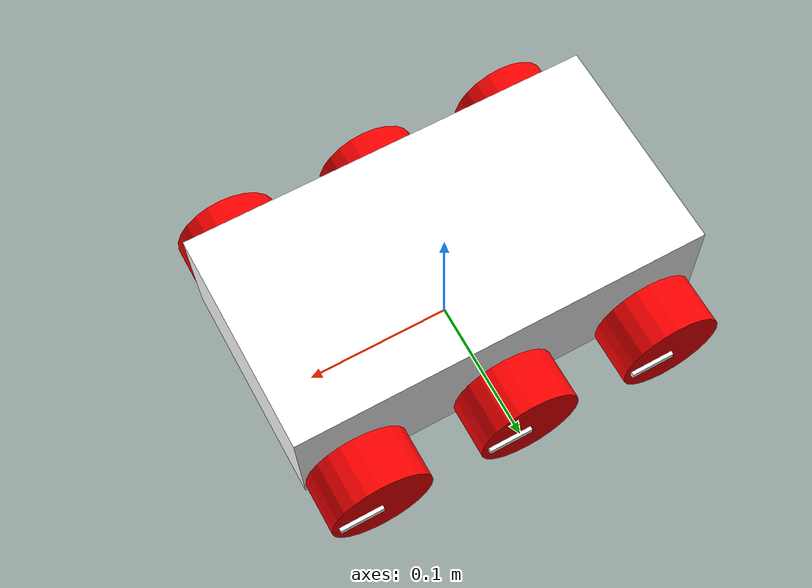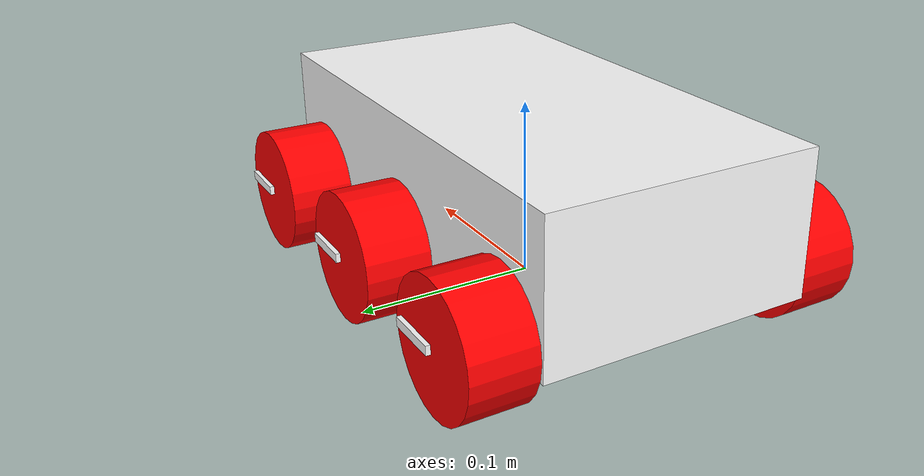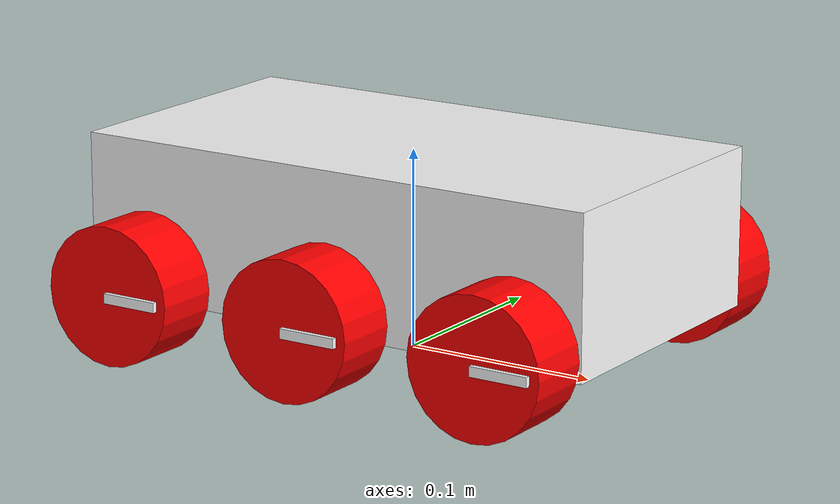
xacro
<?xml version="1.0"?>
<robot xmlns:xacro="http://www.ros.org/wiki/xacro"  name="bartrover">

    <!-- ********************** INERTIA MACROS *********************************  -->
    <xacro:include filename="inertial_macros.xacro" />
    <!-- ********************** MATERIAL MACROS *********************************  -->
    <xacro:include filename="material_macros.xacro" />
    <!-- ********************** CONSTANTS MACROS *********************************  -->
    <xacro:include filename="constants_macros.xacro" />

	<!-- ********************** BASE LINK *********************************  -->
    <link name="base_link">
    </link>
    <gazebo reference="base_link">
        <material>Gazebo/White</material>
    </gazebo>

    <!-- ********************** BODY LINK *********************************  -->
    <joint name="base_joint" type="fixed">
        <axis rpy="0 0 0" xyz="0 0 0"/>
        <parent link="base_link" />
        <child link="body_link" />
        <origin xyz="0 0 ${wheel_radius}" rpy="0 0 0"/>
    </joint>

    <link name="body_link">
		<visual>
			<origin xyz="0 0 0.03" rpy="0 0 0" />
            <geometry>
                <box size="${body_length} ${wheel_separation} ${body_height}"/>
            </geometry>
			<material name="White" />
		</visual>
		<collision>
			<origin xyz="0 0 0.03" rpy="0 0 0" />
            <geometry>
                <box size="${body_length} ${wheel_separation} ${body_height}"/>
            </geometry>
		</collision>
        <xacro:inertial_box mass="${body_mass}" x="${body_length}" y="${wheel_separation}" z="${body_height}">
            <origin xyz="0 0 0.03" rpy="0 0 0"/>
        </xacro:inertial_box>
    </link>
    <gazebo reference="body_link">
        <material>Gazebo/White</material>
    </gazebo>

    <!-- ********************** WHEEL LINKS REAR ********************************* -->
    <!-- ********************** LEFT ********************************* -->
    <joint name="rear_left_wheel_joint" type="continuous">
        <parent link="body_link" />
        <child link="rear_left_wheel" />
        <origin xyz="-0.104 ${wheel_separation/2 + wheel_width/2} 0" rpy="0 0 0"/>
        <axis xyz="0 1 0"/>
        <limit effort="${limit_effort}" velocity="${limit_velocity}"/>
        <dynamics damping="${dynamic_damping}" friction="${spinning_friction}"/>
    </joint>

    <link name="rear_left_wheel">
        <visual>
			<origin xyz="0 0 0" rpy="${PI / 2} 0 0" />
            <geometry>
                <cylinder radius="${wheel_radius}" length="${wheel_width}"/>
            </geometry>
            <material name="Red" />
        </visual>
        <collision>
			<origin xyz="0 0 0" rpy="${PI / 2} 0 0" />
            <geometry>
                <cylinder radius="${wheel_radius}" length="${wheel_width}"/>
            </geometry>
        </collision>
        <xacro:inertial_cylinder mass="${wheel_mass}" length="${wheel_width}" radius="${wheel_radius}">
            <origin xyz="0 0 0" rpy="0 0 0"/>
        </xacro:inertial_cylinder>
    </link>
    <gazebo reference="rear_left_wheel">
        <mu1 value="${lateral_friction}" />
        <mu2 value="${spinning_friction}" />
        <kp value="${contact_stiffness}" />
        <kd value="${contact_damping}" />
        <fdir1 value="1 0 0"/>
        <minDepth>0</minDepth>
        <material>Gazebo/Red</material>
    </gazebo>

    <joint name="rear_left_marker_joint" type="fixed">
        <parent link="rear_left_wheel" />
        <child link="rear_left_marker" />
        <origin xyz="0.015 0.0175 0" rpy="0 0 0" />
    </joint>

    <link name="rear_left_marker">
        <visual>
            <origin xyz="0 0 0" rpy="0 0 0" />
            <geometry>
                <box size="0.03 0.005 0.005" />
            </geometry>
            <material name="White" />
        </visual>
        <inertial>
            <mass value="${marker_mass}" />
            <inertia ixx="0.0" ixy="0.0" ixz="0.0" iyy="0.0" iyz="0.0" izz="0.0" />
        </inertial>
    </link>
    <gazebo reference="rear_left_marker">
        <material>Gazebo/White</material>
    </gazebo>

    <!-- ********************** RIGHT ********************************* -->
    <joint name="rear_right_wheel_joint" type="continuous">
        <parent link="body_link" />
        <child link="rear_right_wheel" />
		<origin xyz="-0.104 ${-1 * (wheel_separation/2 + wheel_width/2)} 0" rpy="0 0 0"/>
        <axis xyz="0 1 0"/>
        <limit effort="${limit_effort}" velocity="${limit_velocity}"/>
        <dynamics damping="${dynamic_damping}" friction="${spinning_friction}"/>
    </joint>

    <link name="rear_right_wheel">
        <visual>
			<origin xyz="0 0 0" rpy="${PI / 2} 0 0" />
            <geometry>
                <cylinder length="${wheel_width}" radius="${wheel_radius}"/>
            </geometry>
            <material name="Red" />
        </visual>
        <collision>
			<origin xyz="0 0 0" rpy="${PI / 2} 0 0" />
            <geometry>
                <cylinder length="${wheel_width}" radius="${wheel_radius}"/>
            </geometry>
        </collision>
        <xacro:inertial_cylinder mass="${wheel_mass}" length="${wheel_width}" radius="${wheel_radius}">
            <origin xyz="0 0 0" rpy="0 0 0"/>
        </xacro:inertial_cylinder>
    </link>
    <gazebo reference="rear_right_wheel">
        <mu1 value="${lateral_friction}" />
        <mu2 value="${spinning_friction}" />
        <kp value="${contact_stiffness}" />
        <kd value="${contact_damping}" />
        <fdir1 value="1 0 0"/>
        <minDepth>0</minDepth>
        <material>Gazebo/Red</material>
    </gazebo>

    <joint name="rear_right_marker_joint" type="fixed">
        <parent link="rear_right_wheel" />
        <child link="rear_right_marker" />
        <origin xyz="0.015 -0.0175 0" rpy="0 0 0" />
    </joint>

    <link name="rear_right_marker">
        <visual>
            <origin xyz="0 0 0" rpy="0 0 0" />
            <geometry>
                <box size="0.03 0.005 0.005" />
            </geometry>
            <material name="White" />
        </visual>
        <inertial>
            <mass value="${marker_mass}" />
            <inertia ixx="0.0" ixy="0.0" ixz="0.0" iyy="0.0" iyz="0.0" izz="0.0" />
        </inertial>
    </link>
    <gazebo reference="rear_right_marker">
        <material>Gazebo/White</material>
    </gazebo>

    <!-- ********************** WHEEL LINKS MIDDLE ********************************* -->
    <!-- ********************** LEFT ********************************* -->
    <joint name="middle_left_wheel_joint" type="continuous">
        <parent link="body_link" />
        <child link="middle_left_wheel" />
		<origin xyz="0 ${wheel_separation/2 + wheel_width/2} 0" rpy="0 0 0" />
        <axis xyz="0 1 0"/>
        <limit effort="${limit_effort}" velocity="${limit_velocity}"/>
        <dynamics damping="${dynamic_damping}" friction="${spinning_friction}"/>
    </joint>

    <link name="middle_left_wheel">
        <visual>
			<origin xyz="0 0 0" rpy="${PI / 2} 0 0" />
            <geometry>
                <cylinder length="${wheel_width}" radius="${wheel_radius}"/>
            </geometry>
            <material name="Red" />
        </visual>
        <collision>
			<origin xyz="0 0 0" rpy="${PI / 2} 0 0" />
            <geometry>
                <cylinder length="${wheel_width}" radius="${wheel_radius}"/>
            </geometry>
        </collision>
        <xacro:inertial_cylinder mass="${wheel_mass}" length="${wheel_width}" radius="${wheel_radius}">
            <origin xyz="0 0 0" rpy="0 0 0"/>
        </xacro:inertial_cylinder>
    </link>
    <gazebo reference="middle_left_wheel">
        <mu1 value="${lateral_friction}" />
        <mu2 value="${spinning_friction}" />
        <kp value="${contact_stiffness}" />
        <kd value="${contact_damping}" />
        <fdir1 value="1 0 0"/>
        <minDepth>0</minDepth>
        <material>Gazebo/Red</material>
    </gazebo>

    <joint name="middle_left_marker_joint" type="fixed">
        <parent link="middle_left_wheel" />
        <child link="middle_left_marker" />
        <origin xyz="0.015 0.0175 0" rpy="0 0 0" />
    </joint>

    <link name="middle_left_marker">
        <visual>
            <origin xyz="0 0 0" rpy="0 0 0" />
            <geometry>
                <box size="0.03 0.005 0.005" />
            </geometry>
            <material name="White" />
        </visual>
        <inertial>
            <mass value="${marker_mass}" />
            <inertia ixx="0.0" ixy="0.0" ixz="0.0" iyy="0.0" iyz="0.0" izz="0.0" />
        </inertial>
    </link>
    <gazebo reference="middle_left_marker">
        <material>Gazebo/White</material>
    </gazebo>

    <!-- ********************** RIGHT ********************************* -->
    <joint name="middle_right_wheel_joint" type="continuous">
        <parent link="body_link" />
        <child link="middle_right_wheel" />
		<origin xyz="0 ${-1 * (wheel_separation/2 + wheel_width/2)} 0" rpy="0 0 0" />
        <axis xyz="0 1 0"/>
        <limit effort="${limit_effort}" velocity="${limit_velocity}"/>
        <dynamics damping="${dynamic_damping}" friction="${spinning_friction}"/>
    </joint>

    <link name="middle_right_wheel">
        <visual>
			<origin xyz="0 0 0" rpy="${PI / 2} 0 0" />
            <geometry>
                <cylinder length="${wheel_width}" radius="${wheel_radius}"/>
            </geometry>
            <material name="Red" />
        </visual>
        <collision>
			<origin xyz="0 0 0" rpy="${PI / 2} 0 0" />
            <geometry>
                <cylinder length="${wheel_width}" radius="${wheel_radius}"/>
            </geometry>
        </collision>
        <xacro:inertial_cylinder mass="${wheel_mass}" length="${wheel_width}" radius="${wheel_radius}">
            <origin xyz="0 0 0" rpy="0 0 0"/>
        </xacro:inertial_cylinder>
    </link>
    <gazebo reference="middle_right_wheel">
        <mu1 value="${lateral_friction}" />
        <mu2 value="${spinning_friction}" />
        <kp value="${contact_stiffness}" />
        <kd value="${contact_damping}" />
        <fdir1 value="1 0 0"/>
        <minDepth>0</minDepth>
        <material>Gazebo/Red</material>
    </gazebo>

    <joint name="middle_right_marker_joint" type="fixed">
        <parent link="middle_right_wheel" />
        <child link="middle_right_marker" />
        <origin xyz="0.015 -0.0175 0" rpy="0 0 0" />
    </joint>

    <link name="middle_right_marker">
        <visual>
            <origin xyz="0 0 0" rpy="0 0 0" />
            <geometry>
                <box size="0.03 0.005 0.005" />
            </geometry>
            <material name="White" />
        </visual>
        <inertial>
            <mass value="${marker_mass}" />
            <inertia ixx="0.0" ixy="0.0" ixz="0.0" iyy="0.0" iyz="0.0" izz="0.0" />
        </inertial>
    </link>
    <gazebo reference="middle_right_marker">
        <material>Gazebo/White</material>
    </gazebo>

    <!-- ********************** WHEEL LINKS FRONT *********************************  -->
    <!-- ********************** LEFT ********************************* -->
    <joint name="front_left_wheel_joint" type="continuous">
        <parent link="body_link" />
        <child link="front_left_wheel" />
		<origin xyz="0.104 ${wheel_separation/2 + wheel_width/2} 0" rpy="0 0 0" />
        <axis xyz="0 1 0"/>
        <limit effort="${limit_effort}" velocity="${limit_velocity}"/>
        <dynamics damping="${dynamic_damping}" friction="${spinning_friction}"/>
    </joint>

    <link name="front_left_wheel">
        <visual>
			<origin xyz="0 0 0" rpy="${PI / 2} 0 0" />
            <geometry>
                <cylinder length="${wheel_width}" radius="${wheel_radius}"/>
            </geometry>
            <material name="Red" />
        </visual>
        <collision>
			<origin xyz="0 0 0" rpy="${PI / 2} 0 0" />
            <geometry>
                <cylinder length="${wheel_width}" radius="${wheel_radius}"/>
            </geometry>
        </collision>
        <xacro:inertial_cylinder mass="${wheel_mass}" length="${wheel_width}" radius="${wheel_radius}">
            <origin xyz="0 0 0" rpy="0 0 0"/>
        </xacro:inertial_cylinder>
    </link>
    <gazebo reference="front_left_wheel">
        <mu1 value="${lateral_friction}" />
        <mu2 value="${spinning_friction}" />
        <kp value="${contact_stiffness}" />
        <kd value="${contact_damping}" />
        <fdir1 value="1 0 0"/>
        <minDepth>0</minDepth>
        <material>Gazebo/Red</material>
    </gazebo>

    <joint name="front_left_marker_joint" type="fixed">
        <parent link="front_left_wheel" />
        <child link="front_left_marker" />
        <origin xyz="0.015 0.0175 0" rpy="0 0 0" />
    </joint>

    <link name="front_left_marker">
        <visual>
            <origin xyz="0 0 0" rpy="0 0 0" />
            <geometry>
                <box size="0.03 0.005 0.005" />
            </geometry>
            <material name="White" />
        </visual>
        <inertial>
            <mass value="${marker_mass}" />
            <inertia ixx="0.0" ixy="0.0" ixz="0.0" iyy="0.0" iyz="0.0" izz="0.0" />
        </inertial>
    </link>
    <gazebo reference="front_left_marker">
        <material>Gazebo/White</material>
    </gazebo>

    <!-- ********************** RIGHT ********************************* -->
    <joint name="front_right_wheel_joint" type="continuous">
        <parent link="body_link" />
        <child link="front_right_wheel" />
		<origin xyz="0.104 ${-1 * (wheel_separation/2 + wheel_width/2)} 0" rpy="0 0 0" />
        <axis xyz="0 1 0"/>
        <limit effort="${limit_effort}" velocity="${limit_velocity}"/>
        <dynamics damping="${dynamic_damping}" friction="${spinning_friction}"/>
    </joint>

    <link name="front_right_wheel">
        <visual>
			<origin xyz="0 0 0" rpy="${PI / 2} 0 0" />
            <geometry>
                <cylinder length="${wheel_width}" radius="${wheel_radius}"/>
            </geometry>
            <material name="Red" />
        </visual>
        <collision>
			<origin xyz="0 0 0" rpy="${PI / 2} 0 0" />
            <geometry>
                <cylinder length="${wheel_width}" radius="${wheel_radius}"/>
            </geometry>
        </collision>
        <xacro:inertial_cylinder mass="${wheel_mass}" length="${wheel_width}" radius="${wheel_radius}">
            <origin xyz="0 0 0" rpy="0 0 0"/>
        </xacro:inertial_cylinder>
    </link>
    <gazebo reference="front_right_wheel">
        <mu1 value="${lateral_friction}" />
        <mu2 value="${spinning_friction}" />
        <kp value="${contact_stiffness}" />
        <kd value="${contact_damping}" />
        <fdir1 value="1 0 0"/>
        <minDepth>0</minDepth>
        <material>Gazebo/Red</material>
    </gazebo>

    <joint name="front_right_marker_joint" type="fixed">
        <parent link="front_right_wheel" />
        <child link="front_right_marker" />
        <origin xyz="0.015 -0.0175 0" rpy="0 0 0" />
    </joint>

    <link name="front_right_marker">
        <visual>
            <origin xyz="0 0 0" rpy="0 0 0" />
            <geometry>
                <box size="0.03 0.005 0.005" />
            </geometry>
            <material name="White" />
        </visual>
        <inertial>
            <mass value="${marker_mass}" />
            <inertia ixx="0.0" ixy="0.0" ixz="0.0" iyy="0.0" iyz="0.0" izz="0.0" />
        </inertial>
    </link>
    <gazebo reference="front_right_marker">
        <material>Gazebo/White</material>
    </gazebo>

</robot>

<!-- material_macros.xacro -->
<robot xmlns:xacro="http://www.ros.org/wiki/xacro">

    <!-- Specify Material Properties -->

	<material name="Green">
		<color rgba="0.0 1.0 0.0 1.0"/>
	</material>
	<material name="Blue">
		<color rgba="0.0 0.0 1.0 1.0"/>
	</material>
	<material name="Red">
		<color rgba="1.0 0.0 0.0 1.0"/>
	</material>
	<material name="White">
		<color rgba="1.0 1.0 1.0 1.0"/>
	</material>
	<material name="Yellow">
		<color rgba="1.0 1.0 0.0 1.0"/>
	</material>
</robot>

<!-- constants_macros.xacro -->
<robot xmlns:xacro="http://www.ros.org/wiki/xacro" >

    <!-- Specify Some Useful Robot Constants -->

    <!-- ********************** ROBOT CONSTANTS *********************************  -->
    <xacro:property name="PI" value="3.1415926"/>
    <xacro:property name="clearance" value="0.035" />
    <xacro:property name="body_length" value="0.28"/>
    <xacro:property name="body_height" value="0.08"/>
    <xacro:property name="wheel_separation" value="0.15"/>
    <xacro:property name="wheel_radius" value="0.035"/>
    <xacro:property name="wheel_width" value="0.035"/>

    <xacro:property name="steel_density" value="7850"/> <!--Steel-->
    <xacro:property name="body_density" value="${steel_density/3}"/>
    <xacro:property name="wheel_density" value="900"/> <!--Rubber-->
    <xacro:property name="body_mass" value="${body_density * body_length * body_height * wheel_separation}"/>
    <xacro:property name="wheel_mass" value="${wheel_density * PI * wheel_radius * wheel_radius * wheel_width}"/>
    <xacro:property name="marker_mass" value="0.0"/>

    <xacro:property name="wheel_ixx" value="${wheel_mass*(3*wheel_radius*wheel_radius+wheel_width*wheel_width)/12}" />
    <xacro:property name="wheel_ixy" value="0.0" />
    <xacro:property name="wheel_ixz" value="0.0" />
    <xacro:property name="wheel_iyy" value="${wheel_mass*(3*wheel_radius*wheel_radius+wheel_width*wheel_width)/12}" />
    <xacro:property name="wheel_iyz" value="0.0" />
    <xacro:property name="wheel_izz" value="${wheel_mass*wheel_radius*wheel_radius/2}" />

    <xacro:property name="dynamic_damping" value="0.1" />
    <xacro:property name="limit_effort" value="100" />
    <xacro:property name="limit_velocity" value="10" />

    <!-- ********************** GAZEBO CONSTANTS *********************************  -->
    <xacro:property name="lateral_friction" value="1.0" />
    <xacro:property name="spinning_friction" value="0.1" />
    <xacro:property name="contact_stiffness" value="10000000.0" />
    <xacro:property name="contact_damping" value="1.0" />

</robot>
